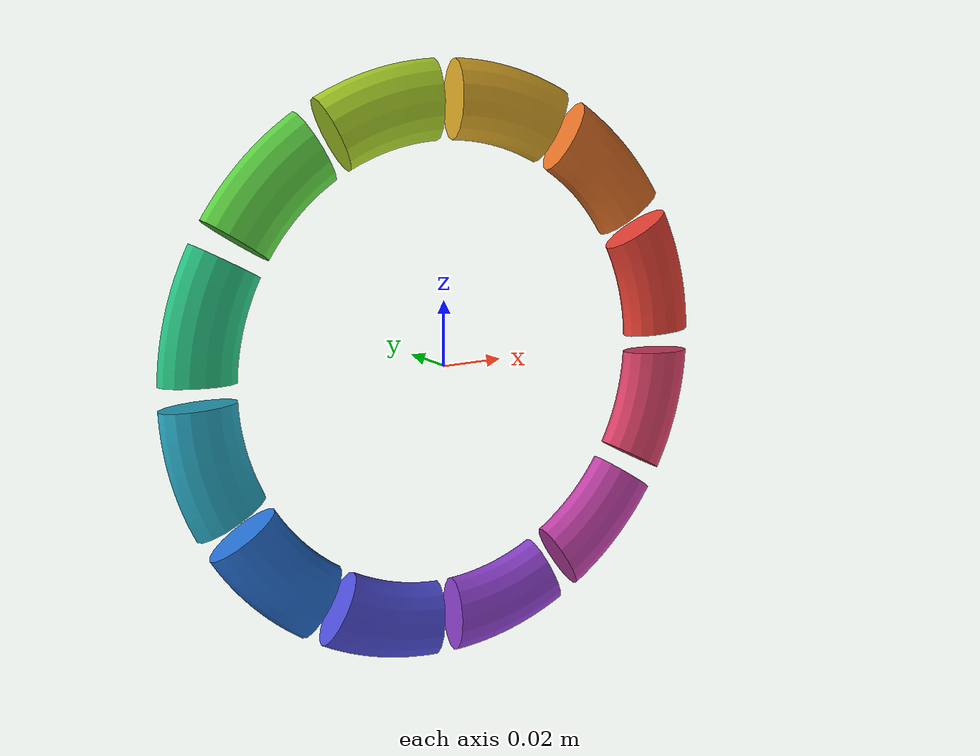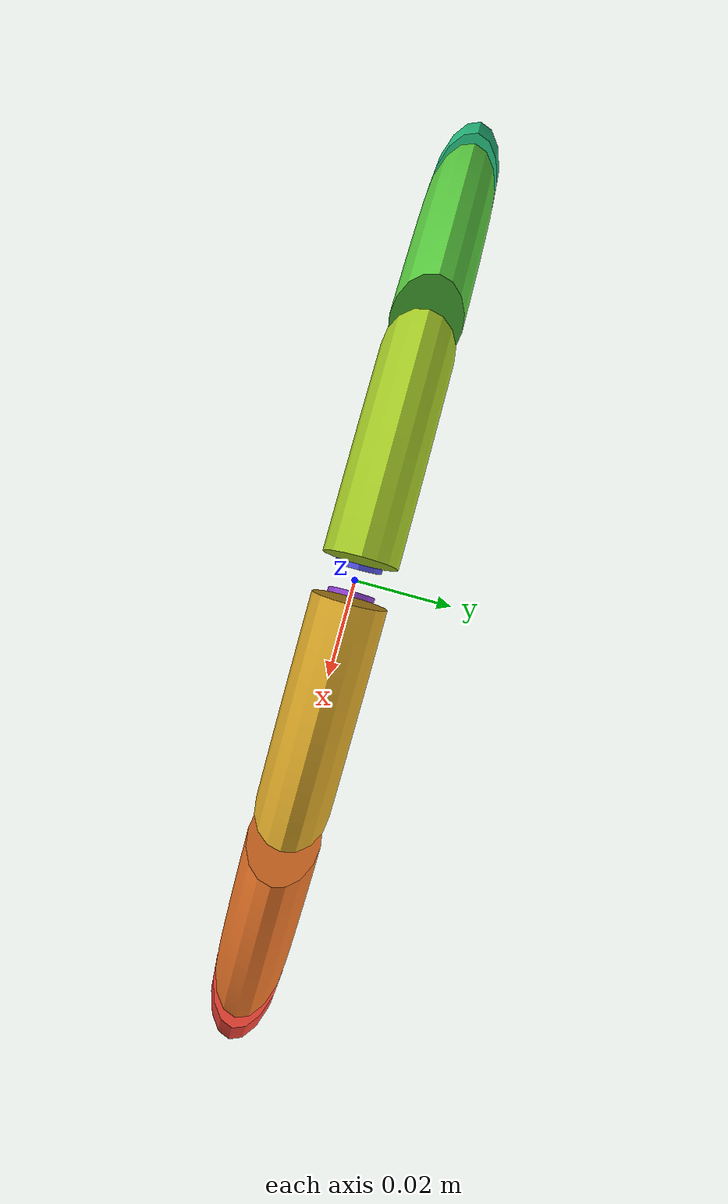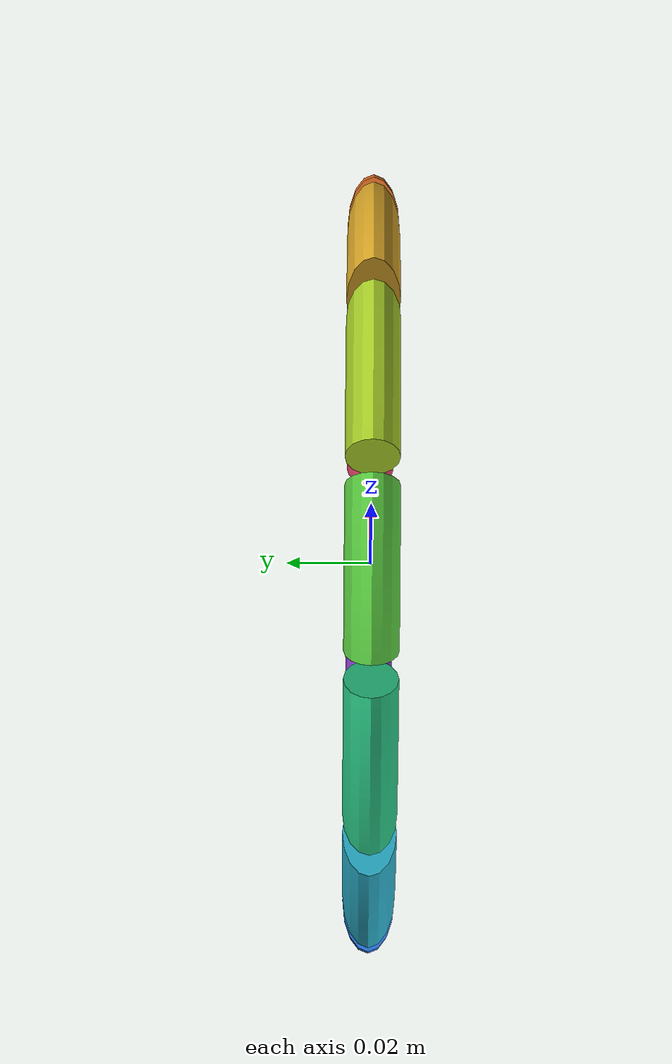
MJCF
<mujoco model="Torus3D_RingSwimmer_v3">

    <compiler angle="degree" inertiafromgeom="true" meshdir="meshes/"/>
    <option timestep="0.01" gravity="0 0 0" integrator="RK4"/>

    <default>
        <joint damping="0.15" stiffness="0" armature="0.015"/>
        <motor ctrlrange="-1 1" ctrllimited="true"/>
        <geom solref="0.002 1" solimp="0.9 0.95 0.001" contype="0" conaffinity="0"/>
    </default>

    <asset>
        <!-- Gradient colors around the ring (12 segments) -->
        <material name="seg1_mat"  rgba="0.90 0.25 0.20 1"/>
        <material name="seg2_mat"  rgba="0.90 0.45 0.15 1"/>
        <material name="seg3_mat"  rgba="0.85 0.65 0.15 1"/>
        <material name="seg4_mat"  rgba="0.65 0.80 0.15 1"/>
        <material name="seg5_mat"  rgba="0.35 0.80 0.25 1"/>
        <material name="seg6_mat"  rgba="0.15 0.75 0.50 1"/>
        <material name="seg7_mat"  rgba="0.15 0.65 0.75 1"/>
        <material name="seg8_mat"  rgba="0.15 0.45 0.85 1"/>
        <material name="seg9_mat"  rgba="0.30 0.30 0.85 1"/>
        <material name="seg10_mat" rgba="0.55 0.25 0.80 1"/>
        <material name="seg11_mat" rgba="0.75 0.25 0.65 1"/>
        <material name="seg12_mat" rgba="0.85 0.25 0.40 1"/>

        <!-- Torus full-tube arc segment meshes -->
        <mesh name="seg1_mesh"  file="torus_seg1.stl"/>
        <mesh name="seg2_mesh"  file="torus_seg2.stl"/>
        <mesh name="seg3_mesh"  file="torus_seg3.stl"/>
        <mesh name="seg4_mesh"  file="torus_seg4.stl"/>
        <mesh name="seg5_mesh"  file="torus_seg5.stl"/>
        <mesh name="seg6_mesh"  file="torus_seg6.stl"/>
        <mesh name="seg7_mesh"  file="torus_seg7.stl"/>
        <mesh name="seg8_mesh"  file="torus_seg8.stl"/>
        <mesh name="seg9_mesh"  file="torus_seg9.stl"/>
        <mesh name="seg10_mesh" file="torus_seg10.stl"/>
        <mesh name="seg11_mesh" file="torus_seg11.stl"/>
        <mesh name="seg12_mesh" file="torus_seg12.stl"/>
    </asset>

    <worldbody>
        <!-- 12-segment torus v3: full tube geometry + 2-DOF joints      -->
        <!-- Ring center at origin, ring in XZ plane, Y = forward        -->
        <!-- R=0.08m, r=0.012m, N=12 segments                           -->
        <!-- Ring centerline: (R*cos(θ), 0, R*sin(θ))                   -->
        <!-- Each segment: single full-tube geom                         -->
        <!-- Joints between segments: bend (radial) + wave (Y-axis)     -->
        <!-- Joint axis conventions at angle θ:                          -->
        <!--   bend axis  = radial inward = (-cos θ, 0, -sin θ)         -->
        <!--   wave axis  = Y (ring normal) = (0, 1, 0)                 -->

        <!-- ========== Segment 1 — ROOT (0°~30°, center at 15°) ========== -->
        <body name="seg1" pos="0.077274 0 0.020706">
            <freejoint name="root_joint"/>
            <geom name="seg1_geom" type="mesh" mesh="seg1_mesh"
                  material="seg1_mat" density="4000"/>

            <!-- ========== Segment 2 (30°~60°, center at 45°) ========== -->
            <!-- Joint at 30°: bend axis = (-cos30, 0, -sin30) -->
            <body name="seg2" pos="-0.007992 0 0.019294">
                <joint name="joint1_bend" type="hinge" axis="-0.866025 0 -0.5"
                       limited="true" range="-30 30"/>
                <joint name="joint1_wave" type="hinge" axis="0 1 0"
                       limited="true" range="-20 20"/>
                <geom name="seg2_geom" type="mesh" mesh="seg2_mesh"
                      material="seg2_mat" density="4000"/>

                <!-- ========== Segment 3 (60°~90°, center at 75°) ========== -->
                <!-- Joint at 60°: bend axis = (-cos60, 0, -sin60) -->
                <body name="seg3" pos="-0.029282 0 0.029282">
                    <joint name="joint2_bend" type="hinge" axis="-0.5 0 -0.866025"
                           limited="true" range="-30 30"/>
                    <joint name="joint2_wave" type="hinge" axis="0 1 0"
                           limited="true" range="-20 20"/>
                    <geom name="seg3_geom" type="mesh" mesh="seg3_mesh"
                          material="seg3_mat" density="4000"/>

                    <!-- ========== Segment 4 (90°~120°, center at 105°) ========== -->
                    <!-- Joint at 90°: bend axis = (0, 0, -1) -->
                    <body name="seg4" pos="-0.040000 0 0.010718">
                        <joint name="joint3_bend" type="hinge" axis="0 0 -1"
                               limited="true" range="-30 30"/>
                        <joint name="joint3_wave" type="hinge" axis="0 1 0"
                               limited="true" range="-20 20"/>
                        <geom name="seg4_geom" type="mesh" mesh="seg4_mesh"
                              material="seg4_mat" density="4000"/>

                        <!-- ========== Segment 5 (120°~150°, center at 135°) ========== -->
                        <!-- Joint at 120°: bend axis = (0.5, 0, -0.866025) -->
                        <body name="seg5" pos="-0.040000 0 -0.010718">
                            <joint name="joint4_bend" type="hinge" axis="0.5 0 -0.866025"
                                   limited="true" range="-30 30"/>
                            <joint name="joint4_wave" type="hinge" axis="0 1 0"
                                   limited="true" range="-20 20"/>
                            <geom name="seg5_geom" type="mesh" mesh="seg5_mesh"
                                  material="seg5_mat" density="4000"/>

                            <!-- ========== Segment 6 (150°~180°, center at 165°) ========== -->
                            <!-- Joint at 150°: bend axis = (0.866025, 0, -0.5) -->
                            <body name="seg6" pos="-0.029282 0 -0.029282">
                                <joint name="joint5_bend" type="hinge" axis="0.866025 0 -0.5"
                                       limited="true" range="-30 30"/>
                                <joint name="joint5_wave" type="hinge" axis="0 1 0"
                                       limited="true" range="-20 20"/>
                                <geom name="seg6_geom" type="mesh" mesh="seg6_mesh"
                                      material="seg6_mat" density="4000"/>

                                <!-- ========== Segment 7 (180°~210°, center at 195°) ========== -->
                                <!-- Joint at 180°: bend axis = (1, 0, 0) -->
                                <body name="seg7" pos="-0.010718 0 -0.040000">
                                    <joint name="joint6_bend" type="hinge" axis="1 0 0"
                                           limited="true" range="-30 30"/>
                                    <joint name="joint6_wave" type="hinge" axis="0 1 0"
                                           limited="true" range="-20 20"/>
                                    <geom name="seg7_geom" type="mesh" mesh="seg7_mesh"
                                          material="seg7_mat" density="4000"/>

                                    <!-- ========== Segment 8 (210°~240°, center at 225°) ========== -->
                                    <!-- Joint at 210°: bend axis = (0.866025, 0, 0.5) -->
                                    <body name="seg8" pos="0.010718 0 -0.040000">
                                        <joint name="joint7_bend" type="hinge" axis="0.866025 0 0.5"
                                               limited="true" range="-30 30"/>
                                        <joint name="joint7_wave" type="hinge" axis="0 1 0"
                                               limited="true" range="-20 20"/>
                                        <geom name="seg8_geom" type="mesh" mesh="seg8_mesh"
                                              material="seg8_mat" density="4000"/>

                                        <!-- ========== Segment 9 (240°~270°, center at 255°) ========== -->
                                        <!-- Joint at 240°: bend axis = (0.5, 0, 0.866025) -->
                                        <body name="seg9" pos="0.029282 0 -0.029282">
                                            <joint name="joint8_bend" type="hinge" axis="0.5 0 0.866025"
                                                   limited="true" range="-30 30"/>
                                            <joint name="joint8_wave" type="hinge" axis="0 1 0"
                                                   limited="true" range="-20 20"/>
                                            <geom name="seg9_geom" type="mesh" mesh="seg9_mesh"
                                                  material="seg9_mat" density="4000"/>

                                            <!-- ========== Segment 10 (270°~300°, center at 285°) ========== -->
                                            <!-- Joint at 270°: bend axis = (0, 0, 1) -->
                                            <body name="seg10" pos="0.040000 0 -0.010718">
                                                <joint name="joint9_bend" type="hinge" axis="0 0 1"
                                                       limited="true" range="-30 30"/>
                                                <joint name="joint9_wave" type="hinge" axis="0 1 0"
                                                       limited="true" range="-20 20"/>
                                                <geom name="seg10_geom" type="mesh" mesh="seg10_mesh"
                                                      material="seg10_mat" density="4000"/>

                                                <!-- ========== Segment 11 (300°~330°, center at 315°) ========== -->
                                                <!-- Joint at 300°: bend axis = (-0.5, 0, 0.866025) -->
                                                <body name="seg11" pos="0.040000 0 0.010718">
                                                    <joint name="joint10_bend" type="hinge" axis="-0.5 0 0.866025"
                                                           limited="true" range="-30 30"/>
                                                    <joint name="joint10_wave" type="hinge" axis="0 1 0"
                                                           limited="true" range="-20 20"/>
                                                    <geom name="seg11_geom" type="mesh" mesh="seg11_mesh"
                                                          material="seg11_mat" density="4000"/>

                                                    <!-- ========== Segment 12 (330°~360°, center at 345°) ========== -->
                                                    <!-- Joint at 330°: bend axis = (-0.866025, 0, 0.5) -->
                                                    <body name="seg12" pos="0.029282 0 0.029282">
                                                        <joint name="joint11_bend" type="hinge" axis="-0.866025 0 0.5"
                                                               limited="true" range="-30 30"/>
                                                        <joint name="joint11_wave" type="hinge" axis="0 1 0"
                                                               limited="true" range="-20 20"/>
                                                        <geom name="seg12_geom" type="mesh" mesh="seg12_mesh"
                                                              material="seg12_mat" density="4000"/>

                                                        <!-- ========== Closure joint (seg12→seg1, at 0°) ========== -->
                                                        <!-- Joint at 0°: bend axis = (-1, 0, 0) -->
                                                        <body name="seg12_closure" pos="0.010718 0 0.040000">
                                                            <inertial mass="0.001" pos="0 0 0" diaginertia="1e-9 1e-9 1e-9"/>
                                                            <joint name="joint12_bend" type="hinge" axis="-1 0 0"
                                                                   limited="true" range="-30 30"/>
                                                            <joint name="joint12_wave" type="hinge" axis="0 1 0"
                                                                   limited="true" range="-20 20"/>
                                                        </body>
                                                    </body>
                                                </body>
                                            </body>
                                        </body>
                                    </body>
                                </body>
                            </body>
                        </body>
                    </body>
                </body>
            </body>
        </body>

        <light directional="true" diffuse="0.9 0.9 0.9" pos="0 0 3" dir="0 0 -1"/>
    </worldbody>

    <!-- Weld constraint to close the ring: seg12_closure → seg1 -->
    <equality>
        <weld body1="seg12_closure" body2="seg1"
              solref="0.02 1"
              solimp="0.9 0.95 0.001"
              active="true"/>
    </equality>

    <actuator>
        <!-- 24 position actuators: 12 bend + 12 wave -->
        <!-- Ordered: bend1,wave1, bend2,wave2, ... -->
        <!-- bend: ±0.524 rad (±30°), wave: ±0.349 rad (±20°) -->

        <!-- Joint 1 (seg1→seg2, at 30°) -->
        <position name="pos1_bend"  joint="joint1_bend"  kp="2.5" kv="0.25" ctrlrange="-0.524 0.524" forcerange="-1.0 1.0"/>
        <position name="pos1_wave"  joint="joint1_wave"  kp="2.5" kv="0.25" ctrlrange="-0.349 0.349" forcerange="-1.0 1.0"/>

        <!-- Joint 2 (seg2→seg3, at 60°) -->
        <position name="pos2_bend"  joint="joint2_bend"  kp="2.5" kv="0.25" ctrlrange="-0.524 0.524" forcerange="-1.0 1.0"/>
        <position name="pos2_wave"  joint="joint2_wave"  kp="2.5" kv="0.25" ctrlrange="-0.349 0.349" forcerange="-1.0 1.0"/>

        <!-- Joint 3 (seg3→seg4, at 90°) -->
        <position name="pos3_bend"  joint="joint3_bend"  kp="2.5" kv="0.25" ctrlrange="-0.524 0.524" forcerange="-1.0 1.0"/>
        <position name="pos3_wave"  joint="joint3_wave"  kp="2.5" kv="0.25" ctrlrange="-0.349 0.349" forcerange="-1.0 1.0"/>

        <!-- Joint 4 (seg4→seg5, at 120°) -->
        <position name="pos4_bend"  joint="joint4_bend"  kp="2.5" kv="0.25" ctrlrange="-0.524 0.524" forcerange="-1.0 1.0"/>
        <position name="pos4_wave"  joint="joint4_wave"  kp="2.5" kv="0.25" ctrlrange="-0.349 0.349" forcerange="-1.0 1.0"/>

        <!-- Joint 5 (seg5→seg6, at 150°) -->
        <position name="pos5_bend"  joint="joint5_bend"  kp="2.5" kv="0.25" ctrlrange="-0.524 0.524" forcerange="-1.0 1.0"/>
        <position name="pos5_wave"  joint="joint5_wave"  kp="2.5" kv="0.25" ctrlrange="-0.349 0.349" forcerange="-1.0 1.0"/>

        <!-- Joint 6 (seg6→seg7, at 180°) -->
        <position name="pos6_bend"  joint="joint6_bend"  kp="2.5" kv="0.25" ctrlrange="-0.524 0.524" forcerange="-1.0 1.0"/>
        <position name="pos6_wave"  joint="joint6_wave"  kp="2.5" kv="0.25" ctrlrange="-0.349 0.349" forcerange="-1.0 1.0"/>

        <!-- Joint 7 (seg7→seg8, at 210°) -->
        <position name="pos7_bend"  joint="joint7_bend"  kp="2.5" kv="0.25" ctrlrange="-0.524 0.524" forcerange="-1.0 1.0"/>
        <position name="pos7_wave"  joint="joint7_wave"  kp="2.5" kv="0.25" ctrlrange="-0.349 0.349" forcerange="-1.0 1.0"/>

        <!-- Joint 8 (seg8→seg9, at 240°) -->
        <position name="pos8_bend"  joint="joint8_bend"  kp="2.5" kv="0.25" ctrlrange="-0.524 0.524" forcerange="-1.0 1.0"/>
        <position name="pos8_wave"  joint="joint8_wave"  kp="2.5" kv="0.25" ctrlrange="-0.349 0.349" forcerange="-1.0 1.0"/>

        <!-- Joint 9 (seg9→seg10, at 270°) -->
        <position name="pos9_bend"  joint="joint9_bend"  kp="2.5" kv="0.25" ctrlrange="-0.524 0.524" forcerange="-1.0 1.0"/>
        <position name="pos9_wave"  joint="joint9_wave"  kp="2.5" kv="0.25" ctrlrange="-0.349 0.349" forcerange="-1.0 1.0"/>

        <!-- Joint 10 (seg10→seg11, at 300°) -->
        <position name="pos10_bend" joint="joint10_bend" kp="2.5" kv="0.25" ctrlrange="-0.524 0.524" forcerange="-1.0 1.0"/>
        <position name="pos10_wave" joint="joint10_wave" kp="2.5" kv="0.25" ctrlrange="-0.349 0.349" forcerange="-1.0 1.0"/>

        <!-- Joint 11 (seg11→seg12, at 330°) -->
        <position name="pos11_bend" joint="joint11_bend" kp="2.5" kv="0.25" ctrlrange="-0.524 0.524" forcerange="-1.0 1.0"/>
        <position name="pos11_wave" joint="joint11_wave" kp="2.5" kv="0.25" ctrlrange="-0.349 0.349" forcerange="-1.0 1.0"/>

        <!-- Joint 12 (seg12→seg1 closure, at 0°) -->
        <position name="pos12_bend" joint="joint12_bend" kp="2.5" kv="0.25" ctrlrange="-0.524 0.524" forcerange="-1.0 1.0"/>
        <position name="pos12_wave" joint="joint12_wave" kp="2.5" kv="0.25" ctrlrange="-0.349 0.349" forcerange="-1.0 1.0"/>
    </actuator>
</mujoco>
